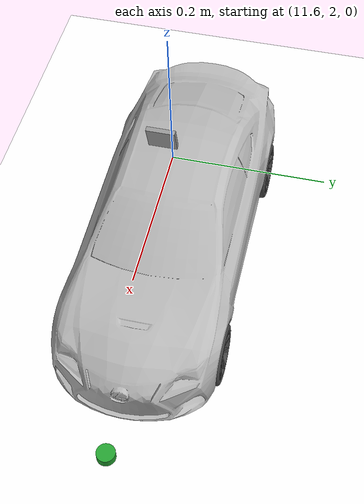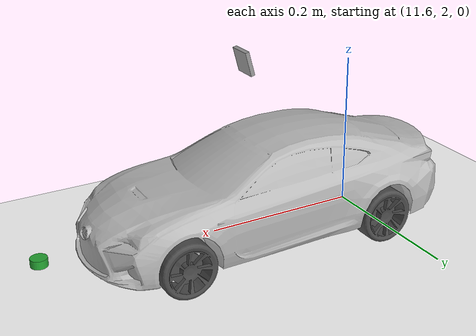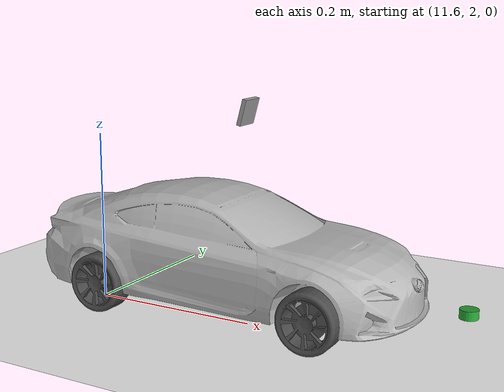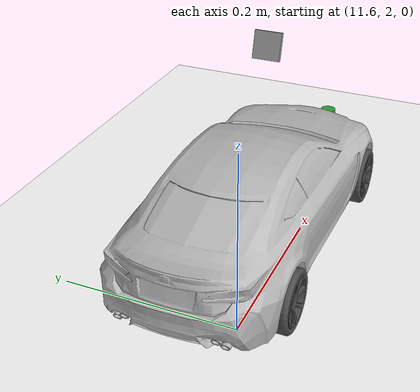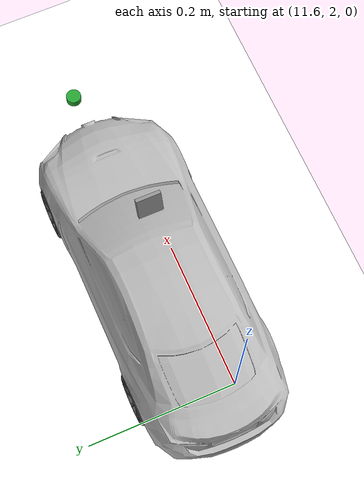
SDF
<sdf version="1.7">
 <world name="bfmc_official">
  <gravity>0 0 -9.8</gravity>
  <light name="c1" type="point">
   <pose>0 0 2 0 -0 0</pose>
   <diffuse>125 125 125 125</diffuse>
   <specular>125 125 125 125</specular>
   <attenuation><range>20</range><constant>0.3</constant><quadratic>0</quadratic><linear>0</linear></attenuation>
   <cast_shadows>0</cast_shadows>
   <direction>0 0 -1</direction>
   <spot><inner_angle>0</inner_angle><outer_angle>0</outer_angle><falloff>0</falloff></spot>
  </light>
  <light name="c2" type="point">
   <pose>15 0 2 0 -0 0</pose>
   <diffuse>125 125 125 125</diffuse>
   <specular>125 125 125 125</specular>
   <attenuation><range>20</range><constant>0.3</constant><quadratic>0</quadratic><linear>0</linear></attenuation>
   <cast_shadows>0</cast_shadows>
   <direction>0 0 -1</direction>
   <spot><inner_angle>0</inner_angle><outer_angle>0</outer_angle><falloff>0</falloff></spot>
  </light>
  <light name="c3" type="point">
   <pose>0 -15 2 0 -0 0</pose>
   <diffuse>125 125 125 125</diffuse>
   <specular>125 125 125 125</specular>
   <attenuation><range>20</range><constant>0.3</constant><quadratic>0</quadratic><linear>0</linear></attenuation>
   <cast_shadows>0</cast_shadows>
   <direction>0 0 -1</direction>
   <spot><inner_angle>0</inner_angle><outer_angle>0</outer_angle><falloff>0</falloff></spot>
  </light>
  <light name="c4" type="point">
   <pose>15 -15 2 0 -0 0</pose>
   <diffuse>125 125 125 125</diffuse>
   <specular>125 125 125 125</specular>
   <attenuation><range>50</range><constant>0.3</constant><quadratic>0</quadratic><linear>0</linear></attenuation>
   <cast_shadows>0</cast_shadows>
   <direction>0 0 -1</direction>
   <spot><inner_angle>0</inner_angle><outer_angle>0</outer_angle><falloff>0</falloff></spot>
  </light>
  <model name="track">
   <static>1</static>
   <link name="link">
    <collision name="collision">
     <geometry><plane><normal>0 0 1</normal><size>20.68 13.74</size></plane></geometry>
     <surface>
      <contact><collide_bitmask>65535</collide_bitmask></contact>
      <friction><ode><mu>1</mu><mu2>1</mu2></ode></friction>
     </surface>
    </collision>
    <visual name="visual">
     <geometry><plane><normal>0 0 1</normal><size>20.68 13.74</size></plane></geometry>
     <material>
      <ambient>1 1 1 1</ambient>
      <diffuse>1 1 1 1</diffuse>
      <specular>0 0 0 0</specular>
      <emissive>1 1 1 1</emissive>
      <script>
       <uri>model://track/materials/scripts</uri>
       <uri>model://track/materials/textures</uri>
       <name>BFMC_MATERIAL</name>
      </script>
     </material>
    </visual>
   </link>
   <pose>10.34 6.87 0 0 -0 0</pose>
  </model>
  <magnetic_field>6e-06 2.3e-05 -4.2e-05</magnetic_field>
  <atmosphere type="adiabatic"/>
  <physics type="ode">
   <max_step_size>0.001</max_step_size>
   <real_time_factor>1</real_time_factor>
   <real_time_update_rate>1000</real_time_update_rate>
  </physics>
  <scene><ambient>0.4 0.4 0.4 1</ambient><background>0.7 0.7 0.7 1</background><shadows>1</shadows></scene>
  <spherical_coordinates>
   <surface_model>EARTH_WGS84</surface_model>
   <latitude_deg>0</latitude_deg>
   <longitude_deg>0</longitude_deg>
   <elevation>0</elevation>
   <heading_deg>0</heading_deg>
  </spherical_coordinates>
  <model name="automobile">
   <frame name="chassis::__model__" attached_to="chassis::link">
    <pose relative_to="__model__">0 0 0 0 -0 0</pose>
   </frame>
   <link name="chassis::link">
    <inertial>
     <mass>0.26244</mass>
     <inertia>
      <ixx>0.00283444</ixx>
      <ixy>0</ixy>
      <ixz>0</ixz>
      <iyy>0.00039867</iyy>
      <iyz>0</iyz>
      <izz>0.00323293</izz>
     </inertia>
    </inertial>
    <pose relative_to="chassis::__model__">0 0 0 0 -0 0</pose>
    <visual name="visual">
     <pose>0 0 -0.0065 0 -0 0</pose>
     <geometry><mesh><uri>model://chassis/meshes/chassisV5.dae</uri><scale>1 1 1</scale></mesh></geometry>
     <material>
      <lighting>1</lighting>
      <shader type="vertex"><normal_map>__default__</normal_map></shader>
      <ambient>0.6 0.6 0.6 1</ambient>
      <diffuse>0.85 0.85 0.85 1</diffuse>
      <specular>0.6 0.6 0.6 1</specular>
      <emissive>0 0 0 1</emissive>
     </material>
    </visual>
    <collision name="collision">
     <geometry><box><size>0.135 0.36 0.002</size></box></geometry>
     <surface>
      <friction>
       <ode><mu>1</mu><mu2>1</mu2><fdir1>0 0 0</fdir1><slip1>0</slip1><slip2>0</slip2></ode>
       <torsional>
        <coefficient>1</coefficient>
        <patch_radius>0</patch_radius>
        <surface_radius>0</surface_radius>
        <use_patch_radius>1</use_patch_radius>
        <ode><slip>0</slip></ode>
       </torsional>
      </friction>
      <bounce><restitution_coefficient>0</restitution_coefficient><threshold>1e+06</threshold></bounce>
      <contact>
       <collide_without_contact>0</collide_without_contact>
       <collide_without_contact_bitmask>1</collide_without_contact_bitmask>
       <collide_bitmask>1</collide_bitmask>
       <ode>
        <soft_cfm>0</soft_cfm>
        <soft_erp>0.2</soft_erp>
        <kp>1e+13</kp>
        <kd>1</kd>
        <max_vel>0.01</max_vel>
        <min_depth>0</min_depth>
       </ode>
       <bullet>
        <split_impulse>1</split_impulse>
        <split_impulse_penetration_threshold>-0.01</split_impulse_penetration_threshold>
        <soft_cfm>0</soft_cfm>
        <soft_erp>0.2</soft_erp>
        <kp>1e+13</kp>
        <kd>1</kd>
       </bullet>
      </contact>
     </surface>
    </collision>
   </link>
   <frame name="wheel_rear_left::__model__" attached_to="wheel_rear_left::link_rim">
    <pose relative_to="__model__">-0.152 0.081 0 0 -0 0</pose>
   </frame>
   <link name="wheel_rear_left::link_rim">
    <inertial>
     <mass>0.038</mass>
     <inertia>
      <ixx>1.283e-05</ixx>
      <ixy>0</ixy>
      <ixz>0</ixz>
      <iyy>1.283e-05</iyy>
      <iyz>0</iyz>
      <izz>2.069e-05</izz>
     </inertia>
    </inertial>
    <pose relative_to="wheel_rear_left::__model__">0 0 0 1.5708 -0 0</pose>
    <visual name="visual">
     <pose>0 0 0 -1.5708 0 0</pose>
     <geometry><mesh><uri>model://wheel_left/meshes/rim.dae</uri><scale>1 1 1</scale></mesh></geometry>
     <material>
      <lighting>1</lighting>
      <shader type="vertex"><normal_map>__default__</normal_map></shader>
      <ambient>0.2 0.2 0.2 1</ambient>
      <diffuse>0.3 0.3 0.3 1</diffuse>
      <specular>0.5 0.5 0.5 1</specular>
      <emissive>0 0 0 0</emissive>
     </material>
    </visual>
    <collision name="collision">
     <geometry><cylinder><radius>0.033</radius><length>0.028</length></cylinder></geometry>
     <surface>
      <friction>
       <ode><mu>0.7</mu><mu2>0.7</mu2><fdir1>0 0 0</fdir1><slip1>0</slip1><slip2>0</slip2></ode>
       <torsional>
        <coefficient>1</coefficient>
        <patch_radius>0</patch_radius>
        <surface_radius>0</surface_radius>
        <use_patch_radius>1</use_patch_radius>
        <ode><slip>0</slip></ode>
       </torsional>
      </friction>
      <bounce><restitution_coefficient>0</restitution_coefficient><threshold>1e+06</threshold></bounce>
      <contact>
       <collide_without_contact>0</collide_without_contact>
       <collide_without_contact_bitmask>1</collide_without_contact_bitmask>
       <collide_bitmask>1</collide_bitmask>
       <ode>
        <soft_cfm>0</soft_cfm>
        <soft_erp>0.2</soft_erp>
        <kp>1e+07</kp>
        <kd>1</kd>
        <max_vel>0.01</max_vel>
        <min_depth>0</min_depth>
       </ode>
       <bullet>
        <split_impulse>1</split_impulse>
        <split_impulse_penetration_threshold>-0.01</split_impulse_penetration_threshold>
        <soft_cfm>0</soft_cfm>
        <soft_erp>0.2</soft_erp>
        <kp>1e+07</kp>
        <kd>1</kd>
       </bullet>
      </contact>
     </surface>
    </collision>
   </link>
   <frame name="wheel_rear_right::__model__" attached_to="wheel_rear_right::link_rim">
    <pose relative_to="__model__">-0.152 -0.081 0 0 -0 0</pose>
   </frame>
   <link name="wheel_rear_right::link_rim">
    <inertial>
     <mass>0.038</mass>
     <inertia>
      <ixx>1.283e-05</ixx>
      <ixy>0</ixy>
      <ixz>0</ixz>
      <iyy>1.283e-05</iyy>
      <iyz>0</iyz>
      <izz>2.069e-05</izz>
     </inertia>
    </inertial>
    <pose relative_to="wheel_rear_right::__model__">0 0 0 1.5708 -0 0</pose>
    <visual name="visual">
     <pose>0 0 0 -1.5708 0 0</pose>
     <geometry><mesh><uri>model://wheel_right/meshes/rim.dae</uri><scale>1 1 1</scale></mesh></geometry>
     <material>
      <lighting>1</lighting>
      <shader type="vertex"><normal_map>__default__</normal_map></shader>
      <ambient>0.2 0.2 0.2 1</ambient>
      <diffuse>0.3 0.3 0.3 1</diffuse>
      <specular>0.5 0.5 0.5 1</specular>
      <emissive>0 0 0 0</emissive>
     </material>
    </visual>
    <collision name="collision">
     <geometry><cylinder><radius>0.033</radius><length>0.028</length></cylinder></geometry>
     <surface>
      <friction>
       <ode><mu>0.7</mu><mu2>0.7</mu2><fdir1>0 0 0</fdir1><slip1>0</slip1><slip2>0</slip2></ode>
       <torsional>
        <coefficient>1</coefficient>
        <patch_radius>0</patch_radius>
        <surface_radius>0</surface_radius>
        <use_patch_radius>1</use_patch_radius>
        <ode><slip>0</slip></ode>
       </torsional>
      </friction>
      <bounce><restitution_coefficient>0</restitution_coefficient><threshold>1e+06</threshold></bounce>
      <contact>
       <collide_without_contact>0</collide_without_contact>
       <collide_without_contact_bitmask>1</collide_without_contact_bitmask>
       <collide_bitmask>1</collide_bitmask>
       <ode>
        <soft_cfm>0</soft_cfm>
        <soft_erp>0.2</soft_erp>
        <kp>1e+07</kp>
        <kd>1</kd>
        <max_vel>0.01</max_vel>
        <min_depth>0</min_depth>
       </ode>
       <bullet>
        <split_impulse>1</split_impulse>
        <split_impulse_penetration_threshold>-0.01</split_impulse_penetration_threshold>
        <soft_cfm>0</soft_cfm>
        <soft_erp>0.2</soft_erp>
        <kp>1e+07</kp>
        <kd>1</kd>
       </bullet>
      </contact>
     </surface>
    </collision>
   </link>
   <frame name="steer_left::__model__" attached_to="steer_left::link_steer">
    <pose relative_to="__model__">0.112 0.0725 0 0 -0 0</pose>
   </frame>
   <link name="steer_left::link_steer">
    <inertial>
     <mass>0.001</mass>
     <inertia>
      <ixx>0.00014583</ixx>
      <ixy>0</ixy>
      <ixz>0</ixz>
      <iyy>0.00014583</iyy>
      <iyz>0</iyz>
      <izz>0.000125</izz>
     </inertia>
    </inertial>
    <pose relative_to="steer_left::__model__">0 0 0 1.5708 -0 0</pose>
    <visual name="visual">
     <geometry><cylinder><radius>0.001</radius><length>0.01</length></cylinder></geometry>
     <material>
      <lighting>1</lighting>
      <script><uri>file://media/materials/scripts/gazebo.material</uri><name>Gazebo/Grey</name></script>
      <shader type="vertex"><normal_map>__default__</normal_map></shader>
      <ambient>0.3 0.3 0.3 1</ambient>
      <diffuse>0.7 0.7 0.7 1</diffuse>
      <specular>0.01 0.01 0.01 1</specular>
      <emissive>0 0 0 1</emissive>
     </material>
    </visual>
    <collision name="collision">
     <geometry><cylinder><radius>0.001</radius><length>0.01</length></cylinder></geometry>
     <surface>
      <friction>
       <ode><mu>1</mu><mu2>1</mu2><fdir1>0 0 0</fdir1><slip1>0</slip1><slip2>0</slip2></ode>
       <torsional>
        <coefficient>1</coefficient>
        <patch_radius>0</patch_radius>
        <surface_radius>0</surface_radius>
        <use_patch_radius>1</use_patch_radius>
        <ode><slip>0</slip></ode>
       </torsional>
      </friction>
      <bounce><restitution_coefficient>0</restitution_coefficient><threshold>1e+06</threshold></bounce>
      <contact>
       <collide_without_contact>0</collide_without_contact>
       <collide_without_contact_bitmask>1</collide_without_contact_bitmask>
       <collide_bitmask>1</collide_bitmask>
       <ode>
        <soft_cfm>0</soft_cfm>
        <soft_erp>0.2</soft_erp>
        <kp>1e+13</kp>
        <kd>1</kd>
        <max_vel>0.01</max_vel>
        <min_depth>0</min_depth>
       </ode>
       <bullet>
        <split_impulse>1</split_impulse>
        <split_impulse_penetration_threshold>-0.01</split_impulse_penetration_threshold>
        <soft_cfm>0</soft_cfm>
        <soft_erp>0.2</soft_erp>
        <kp>1e+13</kp>
        <kd>1</kd>
       </bullet>
      </contact>
     </surface>
    </collision>
   </link>
   <frame name="steer_right::__model__" attached_to="steer_right::link_steer">
    <pose relative_to="__model__">0.112 -0.0725 0 0 -0 0</pose>
   </frame>
   <link name="steer_right::link_steer">
    <inertial>
     <mass>0.001</mass>
     <inertia>
      <ixx>0.00014583</ixx>
      <ixy>0</ixy>
      <ixz>0</ixz>
      <iyy>0.00014583</iyy>
      <iyz>0</iyz>
      <izz>0.000125</izz>
     </inertia>
    </inertial>
    <pose relative_to="steer_right::__model__">0 0 0 1.5708 -0 0</pose>
    <visual name="visual">
     <geometry><cylinder><radius>0.001</radius><length>0.01</length></cylinder></geometry>
     <material>
      <lighting>1</lighting>
      <script><uri>file://media/materials/scripts/gazebo.material</uri><name>Gazebo/Grey</name></script>
      <shader type="vertex"><normal_map>__default__</normal_map></shader>
      <ambient>0.3 0.3 0.3 1</ambient>
      <diffuse>0.7 0.7 0.7 1</diffuse>
      <specular>0.01 0.01 0.01 1</specular>
      <emissive>0 0 0 1</emissive>
     </material>
    </visual>
    <collision name="collision">
     <geometry><cylinder><radius>0.001</radius><length>0.01</length></cylinder></geometry>
     <surface>
      <friction>
       <ode><mu>1</mu><mu2>1</mu2><fdir1>0 0 0</fdir1><slip1>0</slip1><slip2>0</slip2></ode>
       <torsional>
        <coefficient>1</coefficient>
        <patch_radius>0</patch_radius>
        <surface_radius>0</surface_radius>
        <use_patch_radius>1</use_patch_radius>
        <ode><slip>0</slip></ode>
       </torsional>
      </friction>
      <bounce><restitution_coefficient>0</restitution_coefficient><threshold>1e+06</threshold></bounce>
      <contact>
       <collide_without_contact>0</collide_without_contact>
       <collide_without_contact_bitmask>1</collide_without_contact_bitmask>
       <collide_bitmask>1</collide_bitmask>
       <ode>
        <soft_cfm>0</soft_cfm>
        <soft_erp>0.2</soft_erp>
        <kp>1e+13</kp>
        <kd>1</kd>
        <max_vel>0.01</max_vel>
        <min_depth>0</min_depth>
       </ode>
       <bullet>
        <split_impulse>1</split_impulse>
        <split_impulse_penetration_threshold>-0.01</split_impulse_penetration_threshold>
        <soft_cfm>0</soft_cfm>
        <soft_erp>0.2</soft_erp>
        <kp>1e+13</kp>
        <kd>1</kd>
       </bullet>
      </contact>
     </surface>
    </collision>
   </link>
   <frame name="wheel_front_left::__model__" attached_to="wheel_front_left::link_rim">
    <pose relative_to="__model__">0.118 0.081 0 0 -0 0</pose>
   </frame>
   <link name="wheel_front_left::link_rim">
    <inertial>
     <mass>0.038</mass>
     <inertia>
      <ixx>1.283e-05</ixx>
      <ixy>0</ixy>
      <ixz>0</ixz>
      <iyy>1.283e-05</iyy>
      <iyz>0</iyz>
      <izz>2.069e-05</izz>
     </inertia>
    </inertial>
    <pose relative_to="wheel_front_left::__model__">0 0 0 1.5708 -0 0</pose>
    <visual name="visual">
     <pose>0 0 0 -1.5708 0 0</pose>
     <geometry><mesh><uri>model://wheel_left/meshes/rim.dae</uri><scale>1 1 1</scale></mesh></geometry>
     <material>
      <lighting>1</lighting>
      <shader type="vertex"><normal_map>__default__</normal_map></shader>
      <ambient>0.2 0.2 0.2 1</ambient>
      <diffuse>0.3 0.3 0.3 1</diffuse>
      <specular>0.5 0.5 0.5 1</specular>
      <emissive>0 0 0 0</emissive>
     </material>
    </visual>
    <collision name="collision">
     <geometry><cylinder><radius>0.033</radius><length>0.028</length></cylinder></geometry>
     <surface>
      <friction>
       <ode><mu>0.7</mu><mu2>0.7</mu2><fdir1>0 0 0</fdir1><slip1>0</slip1><slip2>0</slip2></ode>
       <torsional>
        <coefficient>1</coefficient>
        <patch_radius>0</patch_radius>
        <surface_radius>0</surface_radius>
        <use_patch_radius>1</use_patch_radius>
        <ode><slip>0</slip></ode>
       </torsional>
      </friction>
      <bounce><restitution_coefficient>0</restitution_coefficient><threshold>1e+06</threshold></bounce>
      <contact>
       <collide_without_contact>0</collide_without_contact>
       <collide_without_contact_bitmask>1</collide_without_contact_bitmask>
       <collide_bitmask>1</collide_bitmask>
       <ode>
        <soft_cfm>0</soft_cfm>
        <soft_erp>0.2</soft_erp>
        <kp>1e+07</kp>
        <kd>1</kd>
        <max_vel>0.01</max_vel>
        <min_depth>0</min_depth>
       </ode>
       <bullet>
        <split_impulse>1</split_impulse>
        <split_impulse_penetration_threshold>-0.01</split_impulse_penetration_threshold>
        <soft_cfm>0</soft_cfm>
        <soft_erp>0.2</soft_erp>
        <kp>1e+07</kp>
        <kd>1</kd>
       </bullet>
      </contact>
     </surface>
    </collision>
   </link>
   <frame name="wheel_front_right::__model__" attached_to="wheel_front_right::link_rim">
    <pose relative_to="__model__">0.118 -0.081 0 0 -0 0</pose>
   </frame>
   <link name="wheel_front_right::link_rim">
    <inertial>
     <mass>0.038</mass>
     <inertia>
      <ixx>1.283e-05</ixx>
      <ixy>0</ixy>
      <ixz>0</ixz>
      <iyy>1.283e-05</iyy>
      <iyz>0</iyz>
      <izz>2.069e-05</izz>
     </inertia>
    </inertial>
    <pose relative_to="wheel_front_right::__model__">0 0 0 1.5708 -0 0</pose>
    <visual name="visual">
     <pose>0 0 0 -1.5708 0 0</pose>
     <geometry><mesh><uri>model://wheel_right/meshes/rim.dae</uri><scale>1 1 1</scale></mesh></geometry>
     <material>
      <lighting>1</lighting>
      <shader type="vertex"><normal_map>__default__</normal_map></shader>
      <ambient>0.2 0.2 0.2 1</ambient>
      <diffuse>0.3 0.3 0.3 1</diffuse>
      <specular>0.5 0.5 0.5 1</specular>
      <emissive>0 0 0 0</emissive>
     </material>
    </visual>
    <collision name="collision">
     <geometry><cylinder><radius>0.033</radius><length>0.028</length></cylinder></geometry>
     <surface>
      <friction>
       <ode><mu>0.7</mu><mu2>0.7</mu2><fdir1>0 0 0</fdir1><slip1>0</slip1><slip2>0</slip2></ode>
       <torsional>
        <coefficient>1</coefficient>
        <patch_radius>0</patch_radius>
        <surface_radius>0</surface_radius>
        <use_patch_radius>1</use_patch_radius>
        <ode><slip>0</slip></ode>
       </torsional>
      </friction>
      <bounce><restitution_coefficient>0</restitution_coefficient><threshold>1e+06</threshold></bounce>
      <contact>
       <collide_without_contact>0</collide_without_contact>
       <collide_without_contact_bitmask>1</collide_without_contact_bitmask>
       <collide_bitmask>1</collide_bitmask>
       <ode>
        <soft_cfm>0</soft_cfm>
        <soft_erp>0.2</soft_erp>
        <kp>1e+07</kp>
        <kd>1</kd>
        <max_vel>0.01</max_vel>
        <min_depth>0</min_depth>
       </ode>
       <bullet>
        <split_impulse>1</split_impulse>
        <split_impulse_penetration_threshold>-0.01</split_impulse_penetration_threshold>
        <soft_cfm>0</soft_cfm>
        <soft_erp>0.2</soft_erp>
        <kp>1e+07</kp>
        <kd>1</kd>
       </bullet>
      </contact>
     </surface>
    </collision>
   </link>
   <frame name="camera::__model__" attached_to="camera::link_camera">
    <pose relative_to="__model__">0 0 0.2 0 0.2617 0</pose>
   </frame>
   <link name="camera::link_camera">
    <inertial>
     <mass>0.0052875</mass>
     <inertia><ixx>4.1e-07</ixx><ixy>0</ixy><ixz>0</ixz><iyy>7.9e-07</iyy><iyz>0</iyz><izz>4.1e-07</izz></inertia>
    </inertial>
    <pose relative_to="camera::__model__">0 0 0 0 -0 0</pose>
    <visual name="visual">
     <geometry><box><size>0.005 0.03 0.03</size></box></geometry>
     <material>
      <lighting>1</lighting>
      <script><uri>file://media/materials/scripts/gazebo.material</uri><name>Gazebo/Grey</name></script>
      <shader type="vertex"><normal_map>__default__</normal_map></shader>
      <ambient>0.3 0.3 0.3 1</ambient>
      <diffuse>0.7 0.7 0.7 1</diffuse>
      <specular>0.01 0.01 0.01 1</specular>
      <emissive>0 0 0 1</emissive>
     </material>
    </visual>
    <collision name="collision">
     <geometry><box><size>0.005 0.03 0.03</size></box></geometry>
     <surface>
      <friction>
       <ode><mu>1</mu><mu2>1</mu2><fdir1>0 0 0</fdir1><slip1>0</slip1><slip2>0</slip2></ode>
       <torsional>
        <coefficient>1</coefficient>
        <patch_radius>0</patch_radius>
        <surface_radius>0</surface_radius>
        <use_patch_radius>1</use_patch_radius>
        <ode><slip>0</slip></ode>
       </torsional>
      </friction>
      <bounce><restitution_coefficient>0</restitution_coefficient><threshold>1e+06</threshold></bounce>
      <contact>
       <collide_without_contact>0</collide_without_contact>
       <collide_without_contact_bitmask>1</collide_without_contact_bitmask>
       <collide_bitmask>1</collide_bitmask>
       <ode>
        <soft_cfm>0</soft_cfm>
        <soft_erp>0.2</soft_erp>
        <kp>1e+13</kp>
        <kd>1</kd>
        <max_vel>0.01</max_vel>
        <min_depth>0</min_depth>
       </ode>
       <bullet>
        <split_impulse>1</split_impulse>
        <split_impulse_penetration_threshold>-0.01</split_impulse_penetration_threshold>
        <soft_cfm>0</soft_cfm>
        <soft_erp>0.2</soft_erp>
        <kp>1e+13</kp>
        <kd>1</kd>
       </bullet>
      </contact>
     </surface>
    </collision>
    <sensor name="camera1" type="camera">
     <update_rate>30</update_rate>
     <camera name="head">
      <horizontal_fov>1.08559</horizontal_fov>
      <image><width>640</width><height>480</height><format>R8G8B8</format></image>
      <clip><near>0.02</near><far>100</far></clip>
      <noise><type>gaussian</type><mean>0</mean><stddev>0</stddev></noise>
     </camera>
     <plugin name="camera_controller" filename="libgazebo_ros_camera.so">
      <alwaysOn>1</alwaysOn>
      <updateRate>0.0</updateRate>
      <imageTopicName>image_raw</imageTopicName>
      <cameraInfoTopicName>camera_info</cameraInfoTopicName>
      <frameName>camera::link_camera</frameName>
      <hackBaseline>0.0</hackBaseline>
      <distortionK1>0.0</distortionK1>
      <distortionK2>0.0</distortionK2>
      <distortionK3>0.0</distortionK3>
      <distortionT1>0.0</distortionT1>
      <distortionT2>0.0</distortionT2>
      <robotNamespace>automobile</robotNamespace>
     </plugin>
    </sensor>
   </link>
   <frame name="car_body::__model__" attached_to="car_body::link">
    <pose relative_to="__model__">-0.024 0 -0.028 0 -0 0</pose>
   </frame>
   <link name="car_body::link">
    <inertial>
     <mass>1</mass>
     <inertia>
      <ixx>0.166667</ixx>
      <ixy>0</ixy>
      <ixz>0</ixz>
      <iyy>0.166667</iyy>
      <iyz>0</iyz>
      <izz>0.166667</izz>
     </inertia>
    </inertial>
    <pose relative_to="car_body::__model__">0 -0 0 0 -0 0</pose>
    <visual name="visual">
     <geometry><mesh><uri>model://car_body/meshes/CarBody.dae</uri><scale>1 1 1</scale></mesh></geometry>
     <material>
      <script>
       <uri>model://car_body/materials/scripts</uri>
       <uri>model://car_body/materials/textures</uri>
       <name>CarBody/Image</name>
      </script>
     </material>
    </visual>
   </link>
   <static>0</static>
   <frame name="lidar::__model__" attached_to="lidar::lidar_link">
    <pose relative_to="__model__">0.26 0 0.01 0 -0 0</pose>
   </frame>
   <link name="lidar::lidar_link">
    <pose relative_to="lidar::__model__">0 0 0 0 -0 0</pose>
    <inertial>
     <mass>0.001</mass>
     <inertia>
      <ixx>2.1733e-06</ixx>
      <ixy>0</ixy>
      <ixz>0</ixz>
      <iyy>2.1733e-06</iyy>
      <iyz>0</iyz>
      <izz>1.8e-07</izz>
     </inertia>
    </inertial>
    <visual name="visual">
     <geometry><cylinder><radius>0.01</radius><length>0.01</length></cylinder></geometry>
     <material>
      <script><name>Gazebo/Green</name><uri>__default__</uri></script>
      <shader type="vertex"><normal_map>__default__</normal_map></shader>
     </material>
    </visual>
    <sensor name="laser" type="ray">
     <ray>
      <scan>
       <horizontal>
        <samples>720</samples>
        <resolution>1</resolution>
        <min_angle>-1.57</min_angle>
        <max_angle>1.57</max_angle>
       </horizontal>
       <vertical><samples>1</samples><min_angle>0</min_angle><max_angle>0</max_angle></vertical>
      </scan>
      <range><min>0.0</min><max>2.2</max><resolution>0.01</resolution></range>
      <noise><type>gaussian</type><mean>0</mean><stddev>0.02</stddev></noise>
     </ray>
     <plugin name="LaserPlugin" filename="libgazebo_ros_laser.so">
      <robotNamespace>automobile</robotNamespace>
      <topicName>scan</topicName>
      <frameName>automobile_lidar_lidar_link</frameName>
      <min_distance>0.0</min_distance>
      <max_distance>2.2</max_distance>
     </plugin>
     <always_on>1</always_on>
     <update_rate>20</update_rate>
     <visualize>1</visualize>
    </sensor>
   </link>
   <joint name="joint_leftrear_rim" type="revolute">
    <parent>chassis::link</parent>
    <child>wheel_rear_left::link_rim</child>
    <axis>
     <xyz>0 0 -1</xyz>
     <limit>
      <lower>-1.79769e+308</lower>
      <upper>1.79769e+308</upper>
      <effort>-1</effort>
      <velocity>-1</velocity>
     </limit>
     <dynamics>
      <spring_reference>0</spring_reference>
      <spring_stiffness>0</spring_stiffness>
      <damping>0</damping>
      <friction>0</friction>
     </dynamics>
    </axis>
    <physics>
     <ode><limit><cfm>0</cfm><erp>0.2</erp></limit><suspension><cfm>0</cfm><erp>0.2</erp></suspension></ode>
    </physics>
   </joint>
   <joint name="joint_rightrear_rim" type="revolute">
    <parent>chassis::link</parent>
    <child>wheel_rear_right::link_rim</child>
    <axis>
     <xyz>0 0 -1</xyz>
     <limit>
      <lower>-1.79769e+308</lower>
      <upper>1.79769e+308</upper>
      <effort>-1</effort>
      <velocity>-1</velocity>
     </limit>
     <dynamics>
      <spring_reference>0</spring_reference>
      <spring_stiffness>0</spring_stiffness>
      <damping>0</damping>
      <friction>0</friction>
     </dynamics>
    </axis>
    <physics>
     <ode><limit><cfm>0</cfm><erp>0.2</erp></limit><suspension><cfm>0</cfm><erp>0.2</erp></suspension></ode>
    </physics>
   </joint>
   <joint name="joint_leftfront_steer" type="revolute">
    <parent>chassis::link</parent>
    <child>steer_left::link_steer</child>
    <pose>0 0 0.005 0 -0 0</pose>
    <axis>
     <xyz>0 1 0</xyz>
     <limit>
      <lower>-1.79769e+308</lower>
      <upper>1.79769e+308</upper>
      <effort>-1</effort>
      <velocity>-1</velocity>
     </limit>
     <dynamics>
      <spring_reference>0</spring_reference>
      <spring_stiffness>0</spring_stiffness>
      <damping>0</damping>
      <friction>0</friction>
     </dynamics>
    </axis>
    <physics>
     <ode><limit><cfm>0</cfm><erp>0.2</erp></limit><suspension><cfm>0</cfm><erp>0.2</erp></suspension></ode>
    </physics>
   </joint>
   <joint name="joint_rightfront_steer" type="revolute">
    <parent>chassis::link</parent>
    <child>steer_right::link_steer</child>
    <pose>0 0 -0.005 0 -0 0</pose>
    <axis>
     <xyz>0 1 0</xyz>
     <limit>
      <lower>-1.79769e+308</lower>
      <upper>1.79769e+308</upper>
      <effort>-1</effort>
      <velocity>-1</velocity>
     </limit>
     <dynamics>
      <spring_reference>0</spring_reference>
      <spring_stiffness>0</spring_stiffness>
      <damping>0</damping>
      <friction>0</friction>
     </dynamics>
    </axis>
    <physics>
     <ode><limit><cfm>0</cfm><erp>0.2</erp></limit><suspension><cfm>0</cfm><erp>0.2</erp></suspension></ode>
    </physics>
   </joint>
   <joint name="joint_rightfront_rim" type="revolute">
    <parent>steer_right::link_steer</parent>
    <child>wheel_front_right::link_rim</child>
    <axis>
     <xyz>0 0 -1</xyz>
     <limit>
      <lower>-1.79769e+308</lower>
      <upper>1.79769e+308</upper>
      <effort>-1</effort>
      <velocity>-1</velocity>
     </limit>
     <dynamics>
      <spring_reference>0</spring_reference>
      <spring_stiffness>0</spring_stiffness>
      <damping>0</damping>
      <friction>0</friction>
     </dynamics>
    </axis>
    <physics>
     <ode><limit><cfm>0</cfm><erp>0.2</erp></limit><suspension><cfm>0</cfm><erp>0.2</erp></suspension></ode>
    </physics>
   </joint>
   <joint name="joint_leftfront_rim" type="revolute">
    <parent>steer_left::link_steer</parent>
    <child>wheel_front_left::link_rim</child>
    <axis>
     <xyz>0 0 -1</xyz>
     <limit>
      <lower>-1.79769e+308</lower>
      <upper>1.79769e+308</upper>
      <effort>-1</effort>
      <velocity>-1</velocity>
     </limit>
     <dynamics>
      <spring_reference>0</spring_reference>
      <spring_stiffness>0</spring_stiffness>
      <damping>0</damping>
      <friction>0</friction>
     </dynamics>
    </axis>
    <physics>
     <ode><limit><cfm>0</cfm><erp>0.2</erp></limit><suspension><cfm>0</cfm><erp>0.2</erp></suspension></ode>
    </physics>
   </joint>
   <joint name="joint_body" type="fixed">
    <parent>chassis::link</parent>
    <child>car_body::link</child>
    <physics>
     <ode><limit><cfm>0</cfm><erp>0.2</erp></limit><suspension><cfm>0</cfm><erp>0.2</erp></suspension></ode>
    </physics>
   </joint>
   <joint name="joint_camera" type="fixed">
    <parent>chassis::link</parent>
    <child>camera::link_camera</child>
    <physics>
     <ode><limit><cfm>0</cfm><erp>0.2</erp></limit><suspension><cfm>0</cfm><erp>0.2</erp></suspension></ode>
    </physics>
   </joint>
   <joint name="lidar_joint" type="fixed"><parent>chassis::link</parent><child>lidar::lidar_link</child></joint>
   <plugin name="CarLikeRobotPlugin" filename="libcar_plugin.so">
    <wheelbase>0.26</wheelbase>
    <axletrack>0.162</axletrack>
    <wheelradius>0.0325</wheelradius>
    <speed_wheel_joints>
     <front_wheel_joints>
      <leftjoint>joint_leftfront_rim</leftjoint>
      <rightjoint>joint_rightfront_rim</rightjoint>
     </front_wheel_joints>
     <rear_wheel_joints>
      <leftjoint>joint_leftrear_rim</leftjoint>
      <rightjoint>joint_rightrear_rim</rightjoint>
     </rear_wheel_joints>
     <kp>0.01</kp>
     <ki>0.0</ki>
     <kd>0.0</kd>
    </speed_wheel_joints>
    <steer_wheel_joints>
     <leftjoint>joint_leftfront_steer</leftjoint>
     <rightjoint>joint_rightfront_steer</rightjoint>
     <kp>10</kp>
     <ki>0.0</ki>
     <kd>0.1</kd>
    </steer_wheel_joints>
    <initial_steer>0.0</initial_steer>
    <initial_speed>0.0</initial_speed>
    <robotNamespace>automobile</robotNamespace>
   </plugin>
   <plugin name="bno055" filename="libbno055_plugin.so"><robotNamespace>/</robotNamespace></plugin>
   <plugin name="gps" filename="libgps_plugin.so"><robotNamespace>/</robotNamespace></plugin>
   <pose>11.777 2.03984 0.032939 -5.9e-05 0.00043 0.000564</pose>
  </model>
 </world>
</sdf>
